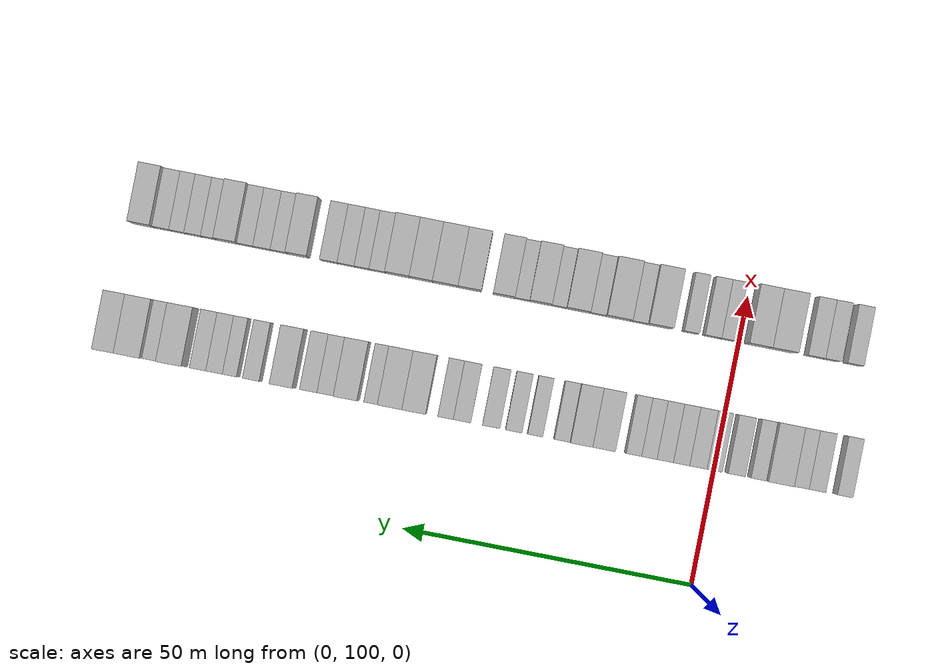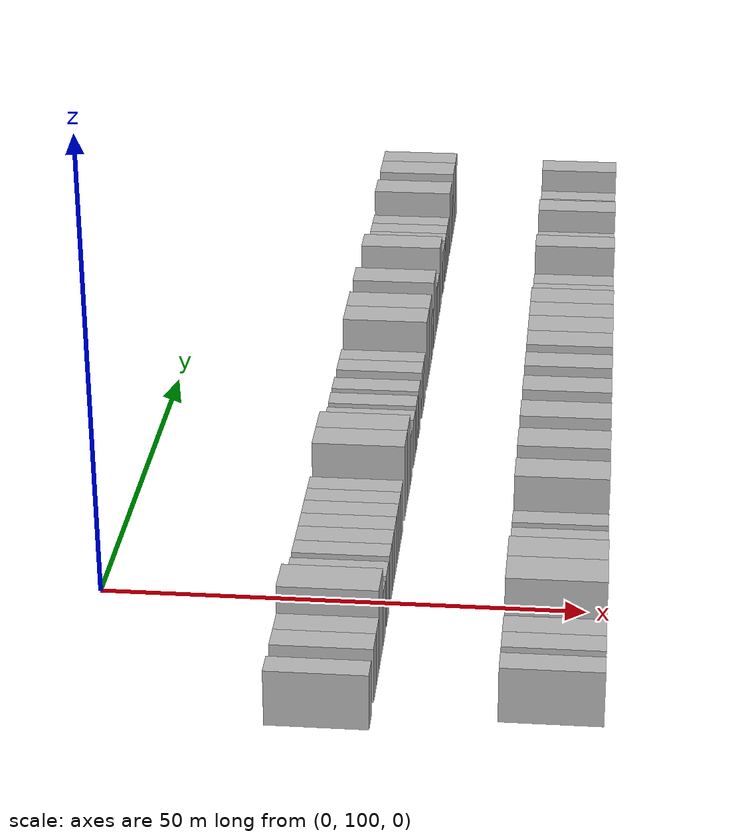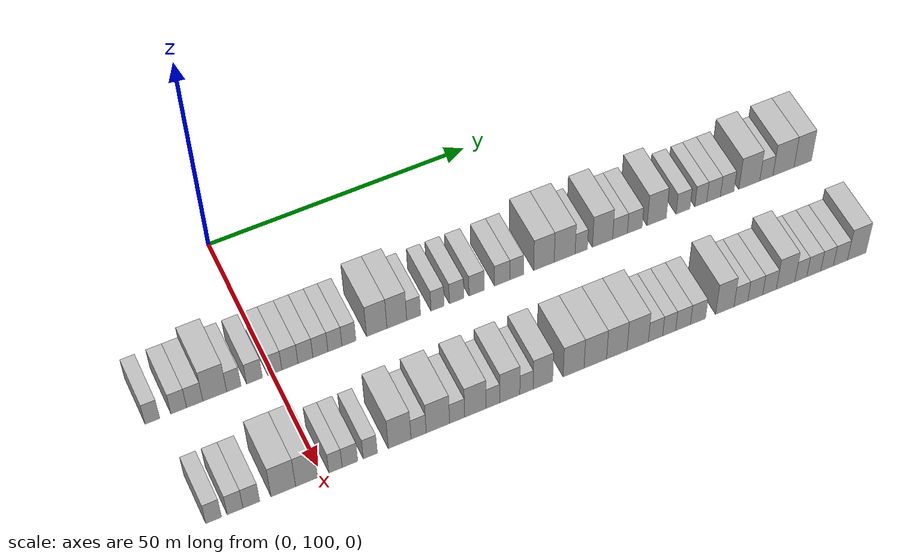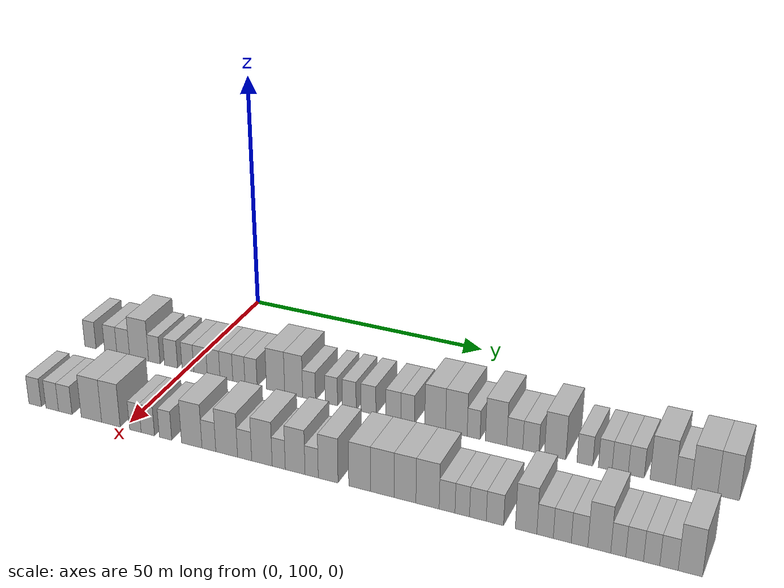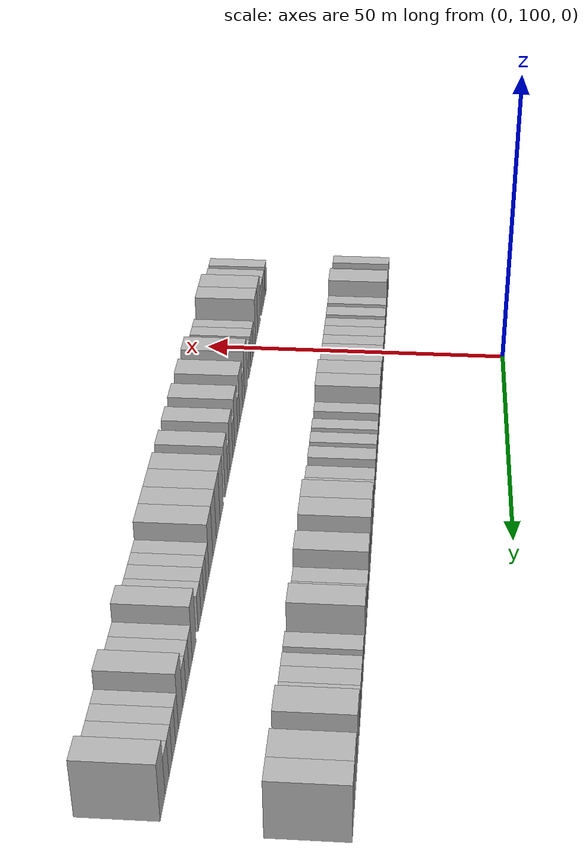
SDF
<sdf version="1.6">
 <world name="default">
  <model name="building_63">
   <static>1</static>
   <pose>25.0000 78.2187 0 0.000000 0.000000 0.000000</pose>
   <link name="link">
    <pose>0 0 3.00 0 0 0</pose>
    <collision name="collision"><geometry><box><size>10.0000 2.6273 6.0000</size></box></geometry></collision>
    <visual name="visual">
     <cast_shadows>0</cast_shadows>
     <geometry><box><size>10.0000 2.6273 6.0000</size></box></geometry>
     <material>
      <script>
       <uri>model://HANNAS_wall/materials/scripts</uri>
       <uri>model://HANNAS_wall/materials/textures</uri>
       <name>vrc/HANNAS_wall</name>
      </script>
     </material>
    </visual>
   </link>
  </model>
  <model name="building_64">
   <static>1</static>
   <pose>25.0000 82.9542 0 0.000000 0.000000 0.000000</pose>
   <link name="link">
    <pose>0 0 3.00 0 0 0</pose>
    <collision name="collision"><geometry><box><size>10.0000 2.8437 6.0000</size></box></geometry></collision>
    <visual name="visual">
     <cast_shadows>0</cast_shadows>
     <geometry><box><size>10.0000 2.8437 6.0000</size></box></geometry>
     <material>
      <script>
       <uri>model://HANNAS_wall/materials/scripts</uri>
       <uri>model://HANNAS_wall/materials/textures</uri>
       <name>vrc/HANNAS_wall</name>
      </script>
     </material>
    </visual>
   </link>
  </model>
  <model name="building_65">
   <static>1</static>
   <pose>25.0000 85.8451 0 0.000000 0.000000 0.000000</pose>
   <link name="link">
    <pose>0 0 3.00 0 0 0</pose>
    <collision name="collision"><geometry><box><size>10.0000 2.9380 6.0000</size></box></geometry></collision>
    <visual name="visual">
     <cast_shadows>0</cast_shadows>
     <geometry><box><size>10.0000 2.9380 6.0000</size></box></geometry>
     <material>
      <script>
       <uri>model://HANNAS_wall/materials/scripts</uri>
       <uri>model://HANNAS_wall/materials/textures</uri>
       <name>vrc/HANNAS_wall</name>
      </script>
     </material>
    </visual>
   </link>
  </model>
  <model name="building_66">
   <static>1</static>
   <pose>25.0000 89.4803 0 0.000000 0.000000 0.000000</pose>
   <link name="link">
    <pose>0 0 4.50 0 0 0</pose>
    <collision name="collision"><geometry><box><size>10.0000 4.3324 9.0000</size></box></geometry></collision>
    <visual name="visual">
     <cast_shadows>0</cast_shadows>
     <geometry><box><size>10.0000 4.3324 9.0000</size></box></geometry>
     <material>
      <script>
       <uri>model://HANNAS_wall/materials/scripts</uri>
       <uri>model://HANNAS_wall/materials/textures</uri>
       <name>vrc/HANNAS_wall</name>
      </script>
     </material>
    </visual>
   </link>
  </model>
  <model name="building_67">
   <static>1</static>
   <pose>25.0000 92.9520 0 0.000000 0.000000 0.000000</pose>
   <link name="link">
    <pose>0 0 3.00 0 0 0</pose>
    <collision name="collision"><geometry><box><size>10.0000 2.6109 6.0000</size></box></geometry></collision>
    <visual name="visual">
     <cast_shadows>0</cast_shadows>
     <geometry><box><size>10.0000 2.6109 6.0000</size></box></geometry>
     <material>
      <script>
       <uri>model://HANNAS_wall/materials/scripts</uri>
       <uri>model://HANNAS_wall/materials/textures</uri>
       <name>vrc/HANNAS_wall</name>
      </script>
     </material>
    </visual>
   </link>
  </model>
  <model name="building_68">
   <static>1</static>
   <pose>25.0000 96.7186 0 0.000000 0.000000 0.000000</pose>
   <link name="link">
    <pose>0 0 3.00 0 0 0</pose>
    <collision name="collision"><geometry><box><size>10.0000 2.9223 6.0000</size></box></geometry></collision>
    <visual name="visual">
     <cast_shadows>0</cast_shadows>
     <geometry><box><size>10.0000 2.9223 6.0000</size></box></geometry>
     <material>
      <script>
       <uri>model://HANNAS_wall/materials/scripts</uri>
       <uri>model://HANNAS_wall/materials/textures</uri>
       <name>vrc/HANNAS_wall</name>
      </script>
     </material>
    </visual>
   </link>
  </model>
  <model name="building_69">
   <static>1</static>
   <pose>25.0000 100.4769 0 0.000000 0.000000 0.000000</pose>
   <link name="link">
    <pose>0 0 3.00 0 0 0</pose>
    <collision name="collision"><geometry><box><size>10.0000 2.5943 6.0000</size></box></geometry></collision>
    <visual name="visual">
     <cast_shadows>0</cast_shadows>
     <geometry><box><size>10.0000 2.5943 6.0000</size></box></geometry>
     <material>
      <script>
       <uri>model://HANNAS_wall/materials/scripts</uri>
       <uri>model://HANNAS_wall/materials/textures</uri>
       <name>vrc/HANNAS_wall</name>
      </script>
     </material>
    </visual>
   </link>
  </model>
  <model name="building_70">
   <static>1</static>
   <pose>25.0000 103.2587 0 0.000000 0.000000 0.000000</pose>
   <link name="link">
    <pose>0 0 3.00 0 0 0</pose>
    <collision name="collision"><geometry><box><size>10.0000 2.9692 6.0000</size></box></geometry></collision>
    <visual name="visual">
     <cast_shadows>0</cast_shadows>
     <geometry><box><size>10.0000 2.9692 6.0000</size></box></geometry>
     <material>
      <script>
       <uri>model://HANNAS_wall/materials/scripts</uri>
       <uri>model://HANNAS_wall/materials/textures</uri>
       <name>vrc/HANNAS_wall</name>
      </script>
     </material>
    </visual>
   </link>
  </model>
  <model name="building_71">
   <static>1</static>
   <pose>25.0000 106.1296 0 0.000000 0.000000 0.000000</pose>
   <link name="link">
    <pose>0 0 3.00 0 0 0</pose>
    <collision name="collision"><geometry><box><size>10.0000 2.7726 6.0000</size></box></geometry></collision>
    <visual name="visual">
     <cast_shadows>0</cast_shadows>
     <geometry><box><size>10.0000 2.7726 6.0000</size></box></geometry>
     <material>
      <script>
       <uri>model://HANNAS_wall/materials/scripts</uri>
       <uri>model://HANNAS_wall/materials/textures</uri>
       <name>vrc/HANNAS_wall</name>
      </script>
     </material>
    </visual>
   </link>
  </model>
  <model name="building_72">
   <static>1</static>
   <pose>25.0000 108.9170 0 0.000000 0.000000 0.000000</pose>
   <link name="link">
    <pose>0 0 3.00 0 0 0</pose>
    <collision name="collision"><geometry><box><size>10.0000 2.8023 6.0000</size></box></geometry></collision>
    <visual name="visual">
     <cast_shadows>0</cast_shadows>
     <geometry><box><size>10.0000 2.8023 6.0000</size></box></geometry>
     <material>
      <script>
       <uri>model://HANNAS_wall/materials/scripts</uri>
       <uri>model://HANNAS_wall/materials/textures</uri>
       <name>vrc/HANNAS_wall</name>
      </script>
     </material>
    </visual>
   </link>
  </model>
  <model name="building_73">
   <static>1</static>
   <pose>25.0000 111.6233 0 0.000000 0.000000 0.000000</pose>
   <link name="link">
    <pose>0 0 3.00 0 0 0</pose>
    <collision name="collision"><geometry><box><size>10.0000 2.6103 6.0000</size></box></geometry></collision>
    <visual name="visual">
     <cast_shadows>0</cast_shadows>
     <geometry><box><size>10.0000 2.6103 6.0000</size></box></geometry>
     <material>
      <script>
       <uri>model://HANNAS_wall/materials/scripts</uri>
       <uri>model://HANNAS_wall/materials/textures</uri>
       <name>vrc/HANNAS_wall</name>
      </script>
     </material>
    </visual>
   </link>
  </model>
  <model name="building_74">
   <static>1</static>
   <pose>25.0000 114.2363 0 0.000000 0.000000 0.000000</pose>
   <link name="link">
    <pose>0 0 3.00 0 0 0</pose>
    <collision name="collision"><geometry><box><size>10.0000 2.6158 6.0000</size></box></geometry></collision>
    <visual name="visual">
     <cast_shadows>0</cast_shadows>
     <geometry><box><size>10.0000 2.6158 6.0000</size></box></geometry>
     <material>
      <script>
       <uri>model://HANNAS_wall/materials/scripts</uri>
       <uri>model://HANNAS_wall/materials/textures</uri>
       <name>vrc/HANNAS_wall</name>
      </script>
     </material>
    </visual>
   </link>
  </model>
  <model name="building_75">
   <static>1</static>
   <pose>25.0000 119.4671 0 0.000000 0.000000 0.000000</pose>
   <link name="link">
    <pose>0 0 4.50 0 0 0</pose>
    <collision name="collision"><geometry><box><size>10.0000 3.8458 9.0000</size></box></geometry></collision>
    <visual name="visual">
     <cast_shadows>0</cast_shadows>
     <geometry><box><size>10.0000 3.8458 9.0000</size></box></geometry>
     <material>
      <script>
       <uri>model://HANNAS_wall/materials/scripts</uri>
       <uri>model://HANNAS_wall/materials/textures</uri>
       <name>vrc/HANNAS_wall</name>
      </script>
     </material>
    </visual>
   </link>
  </model>
  <model name="building_76">
   <static>1</static>
   <pose>25.0000 123.2648 0 0.000000 0.000000 0.000000</pose>
   <link name="link">
    <pose>0 0 4.50 0 0 0</pose>
    <collision name="collision"><geometry><box><size>10.0000 3.7495 9.0000</size></box></geometry></collision>
    <visual name="visual">
     <cast_shadows>0</cast_shadows>
     <geometry><box><size>10.0000 3.7495 9.0000</size></box></geometry>
     <material>
      <script>
       <uri>model://HANNAS_wall/materials/scripts</uri>
       <uri>model://HANNAS_wall/materials/textures</uri>
       <name>vrc/HANNAS_wall</name>
      </script>
     </material>
    </visual>
   </link>
  </model>
  <model name="building_77">
   <static>1</static>
   <pose>25.0000 126.4600 0 0.000000 0.000000 0.000000</pose>
   <link name="link">
    <pose>0 0 3.00 0 0 0</pose>
    <collision name="collision"><geometry><box><size>10.0000 2.6410 6.0000</size></box></geometry></collision>
    <visual name="visual">
     <cast_shadows>0</cast_shadows>
     <geometry><box><size>10.0000 2.6410 6.0000</size></box></geometry>
     <material>
      <script>
       <uri>model://HANNAS_wall/materials/scripts</uri>
       <uri>model://HANNAS_wall/materials/textures</uri>
       <name>vrc/HANNAS_wall</name>
      </script>
     </material>
    </visual>
   </link>
  </model>
  <model name="building_78">
   <static>1</static>
   <pose>25.0000 131.0496 0 0.000000 0.000000 0.000000</pose>
   <link name="link">
    <pose>0 0 3.00 0 0 0</pose>
    <collision name="collision"><geometry><box><size>10.0000 2.5381 6.0000</size></box></geometry></collision>
    <visual name="visual">
     <cast_shadows>0</cast_shadows>
     <geometry><box><size>10.0000 2.5381 6.0000</size></box></geometry>
     <material>
      <script>
       <uri>model://HANNAS_wall/materials/scripts</uri>
       <uri>model://HANNAS_wall/materials/textures</uri>
       <name>vrc/HANNAS_wall</name>
      </script>
     </material>
    </visual>
   </link>
  </model>
  <model name="building_79">
   <static>1</static>
   <pose>25.0000 134.7054 0 0.000000 0.000000 0.000000</pose>
   <link name="link">
    <pose>0 0 3.00 0 0 0</pose>
    <collision name="collision"><geometry><box><size>10.0000 2.7735 6.0000</size></box></geometry></collision>
    <visual name="visual">
     <cast_shadows>0</cast_shadows>
     <geometry><box><size>10.0000 2.7735 6.0000</size></box></geometry>
     <material>
      <script>
       <uri>model://HANNAS_wall/materials/scripts</uri>
       <uri>model://HANNAS_wall/materials/textures</uri>
       <name>vrc/HANNAS_wall</name>
      </script>
     </material>
    </visual>
   </link>
  </model>
  <model name="building_80">
   <static>1</static>
   <pose>25.0000 138.5735 0 0.000000 0.000000 0.000000</pose>
   <link name="link">
    <pose>0 0 3.00 0 0 0</pose>
    <collision name="collision"><geometry><box><size>10.0000 2.9628 6.0000</size></box></geometry></collision>
    <visual name="visual">
     <cast_shadows>0</cast_shadows>
     <geometry><box><size>10.0000 2.9628 6.0000</size></box></geometry>
     <material>
      <script>
       <uri>model://HANNAS_wall/materials/scripts</uri>
       <uri>model://HANNAS_wall/materials/textures</uri>
       <name>vrc/HANNAS_wall</name>
      </script>
     </material>
    </visual>
   </link>
  </model>
  <model name="building_81">
   <static>1</static>
   <pose>25.0000 143.5433 0 0.000000 0.000000 0.000000</pose>
   <link name="link">
    <pose>0 0 3.00 0 0 0</pose>
    <collision name="collision"><geometry><box><size>10.0000 2.9768 6.0000</size></box></geometry></collision>
    <visual name="visual">
     <cast_shadows>0</cast_shadows>
     <geometry><box><size>10.0000 2.9768 6.0000</size></box></geometry>
     <material>
      <script>
       <uri>model://HANNAS_wall/materials/scripts</uri>
       <uri>model://HANNAS_wall/materials/textures</uri>
       <name>vrc/HANNAS_wall</name>
      </script>
     </material>
    </visual>
   </link>
  </model>
  <model name="building_82">
   <static>1</static>
   <pose>25.0000 146.3601 0 0.000000 0.000000 0.000000</pose>
   <link name="link">
    <pose>0 0 3.00 0 0 0</pose>
    <collision name="collision"><geometry><box><size>10.0000 2.6568 6.0000</size></box></geometry></collision>
    <visual name="visual">
     <cast_shadows>0</cast_shadows>
     <geometry><box><size>10.0000 2.6568 6.0000</size></box></geometry>
     <material>
      <script>
       <uri>model://HANNAS_wall/materials/scripts</uri>
       <uri>model://HANNAS_wall/materials/textures</uri>
       <name>vrc/HANNAS_wall</name>
      </script>
     </material>
    </visual>
   </link>
  </model>
  <model name="building_83">
   <static>1</static>
   <pose>25.0000 151.7048 0 0.000000 0.000000 0.000000</pose>
   <link name="link">
    <pose>0 0 4.50 0 0 0</pose>
    <collision name="collision"><geometry><box><size>10.0000 4.0326 9.0000</size></box></geometry></collision>
    <visual name="visual">
     <cast_shadows>0</cast_shadows>
     <geometry><box><size>10.0000 4.0326 9.0000</size></box></geometry>
     <material>
      <script>
       <uri>model://HANNAS_wall/materials/scripts</uri>
       <uri>model://HANNAS_wall/materials/textures</uri>
       <name>vrc/HANNAS_wall</name>
      </script>
     </material>
    </visual>
   </link>
  </model>
  <model name="building_84">
   <static>1</static>
   <pose>25.0000 155.7863 0 0.000000 0.000000 0.000000</pose>
   <link name="link">
    <pose>0 0 4.50 0 0 0</pose>
    <collision name="collision"><geometry><box><size>10.0000 4.1305 9.0000</size></box></geometry></collision>
    <visual name="visual">
     <cast_shadows>0</cast_shadows>
     <geometry><box><size>10.0000 4.1305 9.0000</size></box></geometry>
     <material>
      <script>
       <uri>model://HANNAS_wall/materials/scripts</uri>
       <uri>model://HANNAS_wall/materials/textures</uri>
       <name>vrc/HANNAS_wall</name>
      </script>
     </material>
    </visual>
   </link>
  </model>
  <model name="building_85">
   <static>1</static>
   <pose>25.0000 159.0756 0 0.000000 0.000000 0.000000</pose>
   <link name="link">
    <pose>0 0 3.00 0 0 0</pose>
    <collision name="collision"><geometry><box><size>10.0000 2.4480 6.0000</size></box></geometry></collision>
    <visual name="visual">
     <cast_shadows>0</cast_shadows>
     <geometry><box><size>10.0000 2.4480 6.0000</size></box></geometry>
     <material>
      <script>
       <uri>model://HANNAS_wall/materials/scripts</uri>
       <uri>model://HANNAS_wall/materials/textures</uri>
       <name>vrc/HANNAS_wall</name>
      </script>
     </material>
    </visual>
   </link>
  </model>
  <model name="building_86">
   <static>1</static>
   <pose>25.0000 163.3128 0 0.000000 0.000000 0.000000</pose>
   <link name="link">
    <pose>0 0 4.50 0 0 0</pose>
    <collision name="collision"><geometry><box><size>10.0000 4.0264 9.0000</size></box></geometry></collision>
    <visual name="visual">
     <cast_shadows>0</cast_shadows>
     <geometry><box><size>10.0000 4.0264 9.0000</size></box></geometry>
     <material>
      <script>
       <uri>model://HANNAS_wall/materials/scripts</uri>
       <uri>model://HANNAS_wall/materials/textures</uri>
       <name>vrc/HANNAS_wall</name>
      </script>
     </material>
    </visual>
   </link>
  </model>
  <model name="building_87">
   <static>1</static>
   <pose>25.0000 166.8085 0 0.000000 0.000000 0.000000</pose>
   <link name="link">
    <pose>0 0 3.00 0 0 0</pose>
    <collision name="collision"><geometry><box><size>10.0000 2.9652 6.0000</size></box></geometry></collision>
    <visual name="visual">
     <cast_shadows>0</cast_shadows>
     <geometry><box><size>10.0000 2.9652 6.0000</size></box></geometry>
     <material>
      <script>
       <uri>model://HANNAS_wall/materials/scripts</uri>
       <uri>model://HANNAS_wall/materials/textures</uri>
       <name>vrc/HANNAS_wall</name>
      </script>
     </material>
    </visual>
   </link>
  </model>
  <model name="building_88">
   <static>1</static>
   <pose>25.0000 169.7756 0 0.000000 0.000000 0.000000</pose>
   <link name="link">
    <pose>0 0 3.00 0 0 0</pose>
    <collision name="collision"><geometry><box><size>10.0000 2.9689 6.0000</size></box></geometry></collision>
    <visual name="visual">
     <cast_shadows>0</cast_shadows>
     <geometry><box><size>10.0000 2.9689 6.0000</size></box></geometry>
     <material>
      <script>
       <uri>model://HANNAS_wall/materials/scripts</uri>
       <uri>model://HANNAS_wall/materials/textures</uri>
       <name>vrc/HANNAS_wall</name>
      </script>
     </material>
    </visual>
   </link>
  </model>
  <model name="building_89">
   <static>1</static>
   <pose>25.0000 174.2043 0 0.000000 0.000000 0.000000</pose>
   <link name="link">
    <pose>0 0 4.50 0 0 0</pose>
    <collision name="collision"><geometry><box><size>10.0000 3.8884 9.0000</size></box></geometry></collision>
    <visual name="visual">
     <cast_shadows>0</cast_shadows>
     <geometry><box><size>10.0000 3.8884 9.0000</size></box></geometry>
     <material>
      <script>
       <uri>model://HANNAS_wall/materials/scripts</uri>
       <uri>model://HANNAS_wall/materials/textures</uri>
       <name>vrc/HANNAS_wall</name>
      </script>
     </material>
    </visual>
   </link>
  </model>
  <model name="building_90">
   <static>1</static>
   <pose>25.0000 179.5667 0 0.000000 0.000000 0.000000</pose>
   <link name="link">
    <pose>0 0 3.00 0 0 0</pose>
    <collision name="collision"><geometry><box><size>10.0000 2.8364 6.0000</size></box></geometry></collision>
    <visual name="visual">
     <cast_shadows>0</cast_shadows>
     <geometry><box><size>10.0000 2.8364 6.0000</size></box></geometry>
     <material>
      <script>
       <uri>model://HANNAS_wall/materials/scripts</uri>
       <uri>model://HANNAS_wall/materials/textures</uri>
       <name>vrc/HANNAS_wall</name>
      </script>
     </material>
    </visual>
   </link>
  </model>
  <model name="building_91">
   <static>1</static>
   <pose>25.0000 183.1936 0 0.000000 0.000000 0.000000</pose>
   <link name="link">
    <pose>0 0 3.00 0 0 0</pose>
    <collision name="collision"><geometry><box><size>10.0000 2.4175 6.0000</size></box></geometry></collision>
    <visual name="visual">
     <cast_shadows>0</cast_shadows>
     <geometry><box><size>10.0000 2.4175 6.0000</size></box></geometry>
     <material>
      <script>
       <uri>model://HANNAS_wall/materials/scripts</uri>
       <uri>model://HANNAS_wall/materials/textures</uri>
       <name>vrc/HANNAS_wall</name>
      </script>
     </material>
    </visual>
   </link>
  </model>
  <model name="building_92">
   <static>1</static>
   <pose>25.0000 185.8196 0 0.000000 0.000000 0.000000</pose>
   <link name="link">
    <pose>0 0 3.00 0 0 0</pose>
    <collision name="collision"><geometry><box><size>10.0000 2.8343 6.0000</size></box></geometry></collision>
    <visual name="visual">
     <cast_shadows>0</cast_shadows>
     <geometry><box><size>10.0000 2.8343 6.0000</size></box></geometry>
     <material>
      <script>
       <uri>model://HANNAS_wall/materials/scripts</uri>
       <uri>model://HANNAS_wall/materials/textures</uri>
       <name>vrc/HANNAS_wall</name>
      </script>
     </material>
    </visual>
   </link>
  </model>
  <model name="building_93">
   <static>1</static>
   <pose>25.0000 188.6347 0 0.000000 0.000000 0.000000</pose>
   <link name="link">
    <pose>0 0 3.00 0 0 0</pose>
    <collision name="collision"><geometry><box><size>10.0000 2.7960 6.0000</size></box></geometry></collision>
    <visual name="visual">
     <cast_shadows>0</cast_shadows>
     <geometry><box><size>10.0000 2.7960 6.0000</size></box></geometry>
     <material>
      <script>
       <uri>model://HANNAS_wall/materials/scripts</uri>
       <uri>model://HANNAS_wall/materials/textures</uri>
       <name>vrc/HANNAS_wall</name>
      </script>
     </material>
    </visual>
   </link>
  </model>
  <model name="building_94">
   <static>1</static>
   <pose>25.0000 193.1961 0 0.000000 0.000000 0.000000</pose>
   <link name="link">
    <pose>0 0 4.50 0 0 0</pose>
    <collision name="collision"><geometry><box><size>10.0000 4.3268 9.0000</size></box></geometry></collision>
    <visual name="visual">
     <cast_shadows>0</cast_shadows>
     <geometry><box><size>10.0000 4.3268 9.0000</size></box></geometry>
     <material>
      <script>
       <uri>model://HANNAS_wall/materials/scripts</uri>
       <uri>model://HANNAS_wall/materials/textures</uri>
       <name>vrc/HANNAS_wall</name>
      </script>
     </material>
    </visual>
   </link>
  </model>
  <model name="building_95">
   <static>1</static>
   <pose>25.0000 196.7369 0 0.000000 0.000000 0.000000</pose>
   <link name="link">
    <pose>0 0 3.00 0 0 0</pose>
    <collision name="collision"><geometry><box><size>10.0000 2.7548 6.0000</size></box></geometry></collision>
    <visual name="visual">
     <cast_shadows>0</cast_shadows>
     <geometry><box><size>10.0000 2.7548 6.0000</size></box></geometry>
     <material>
      <script>
       <uri>model://HANNAS_wall/materials/scripts</uri>
       <uri>model://HANNAS_wall/materials/textures</uri>
       <name>vrc/HANNAS_wall</name>
      </script>
     </material>
    </visual>
   </link>
  </model>
  <model name="building_96">
   <static>1</static>
   <pose>25.0000 200.3166 0 0.000000 0.000000 0.000000</pose>
   <link name="link">
    <pose>0 0 4.50 0 0 0</pose>
    <collision name="collision"><geometry><box><size>10.0000 4.4045 9.0000</size></box></geometry></collision>
    <visual name="visual">
     <cast_shadows>0</cast_shadows>
     <geometry><box><size>10.0000 4.4045 9.0000</size></box></geometry>
     <material>
      <script>
       <uri>model://HANNAS_wall/materials/scripts</uri>
       <uri>model://HANNAS_wall/materials/textures</uri>
       <name>vrc/HANNAS_wall</name>
      </script>
     </material>
    </visual>
   </link>
  </model>
  <model name="building_97">
   <static>1</static>
   <pose>25.0000 204.3567 0 0.000000 0.000000 0.000000</pose>
   <link name="link">
    <pose>0 0 4.50 0 0 0</pose>
    <collision name="collision"><geometry><box><size>10.0000 3.6758 9.0000</size></box></geometry></collision>
    <visual name="visual">
     <cast_shadows>0</cast_shadows>
     <geometry><box><size>10.0000 3.6758 9.0000</size></box></geometry>
     <material>
      <script>
       <uri>model://HANNAS_wall/materials/scripts</uri>
       <uri>model://HANNAS_wall/materials/textures</uri>
       <name>vrc/HANNAS_wall</name>
      </script>
     </material>
    </visual>
   </link>
  </model>
  <model name="building_175">
   <static>1</static>
   <pose>47.0000 80.6917 0 0.000000 0.000000 0.000000</pose>
   <link name="link">
    <pose>0 0 3.00 0 0 0</pose>
    <collision name="collision"><geometry><box><size>10.0000 2.7684 6.0000</size></box></geometry></collision>
    <visual name="visual">
     <cast_shadows>0</cast_shadows>
     <geometry><box><size>10.0000 2.7684 6.0000</size></box></geometry>
     <material>
      <script>
       <uri>model://HANNAS_wall/materials/scripts</uri>
       <uri>model://HANNAS_wall/materials/textures</uri>
       <name>vrc/HANNAS_wall</name>
      </script>
     </material>
    </visual>
   </link>
  </model>
  <model name="building_176">
   <static>1</static>
   <pose>47.0000 84.4657 0 0.000000 0.000000 0.000000</pose>
   <link name="link">
    <pose>0 0 3.00 0 0 0</pose>
    <collision name="collision"><geometry><box><size>10.0000 2.7797 6.0000</size></box></geometry></collision>
    <visual name="visual">
     <cast_shadows>0</cast_shadows>
     <geometry><box><size>10.0000 2.7797 6.0000</size></box></geometry>
     <material>
      <script>
       <uri>model://HANNAS_wall/materials/scripts</uri>
       <uri>model://HANNAS_wall/materials/textures</uri>
       <name>vrc/HANNAS_wall</name>
      </script>
     </material>
    </visual>
   </link>
  </model>
  <model name="building_177">
   <static>1</static>
   <pose>47.0000 87.3333 0 0.000000 0.000000 0.000000</pose>
   <link name="link">
    <pose>0 0 3.00 0 0 0</pose>
    <collision name="collision"><geometry><box><size>10.0000 2.9554 6.0000</size></box></geometry></collision>
    <visual name="visual">
     <cast_shadows>0</cast_shadows>
     <geometry><box><size>10.0000 2.9554 6.0000</size></box></geometry>
     <material>
      <script>
       <uri>model://HANNAS_wall/materials/scripts</uri>
       <uri>model://HANNAS_wall/materials/textures</uri>
       <name>vrc/HANNAS_wall</name>
      </script>
     </material>
    </visual>
   </link>
  </model>
  <model name="building_178">
   <static>1</static>
   <pose>47.0000 93.0065 0 0.000000 0.000000 0.000000</pose>
   <link name="link">
    <pose>0 0 4.50 0 0 0</pose>
    <collision name="collision"><geometry><box><size>10.0000 4.3910 9.0000</size></box></geometry></collision>
    <visual name="visual">
     <cast_shadows>0</cast_shadows>
     <geometry><box><size>10.0000 4.3910 9.0000</size></box></geometry>
     <material>
      <script>
       <uri>model://HANNAS_wall/materials/scripts</uri>
       <uri>model://HANNAS_wall/materials/textures</uri>
       <name>vrc/HANNAS_wall</name>
      </script>
     </material>
    </visual>
   </link>
  </model>
  <model name="building_179">
   <static>1</static>
   <pose>47.0000 97.1750 0 0.000000 0.000000 0.000000</pose>
   <link name="link">
    <pose>0 0 4.50 0 0 0</pose>
    <collision name="collision"><geometry><box><size>10.0000 3.9461 9.0000</size></box></geometry></collision>
    <visual name="visual">
     <cast_shadows>0</cast_shadows>
     <geometry><box><size>10.0000 3.9461 9.0000</size></box></geometry>
     <material>
      <script>
       <uri>model://HANNAS_wall/materials/scripts</uri>
       <uri>model://HANNAS_wall/materials/textures</uri>
       <name>vrc/HANNAS_wall</name>
      </script>
     </material>
    </visual>
   </link>
  </model>
  <model name="building_180">
   <static>1</static>
   <pose>47.0000 102.3593 0 0.000000 0.000000 0.000000</pose>
   <link name="link">
    <pose>0 0 3.00 0 0 0</pose>
    <collision name="collision"><geometry><box><size>10.0000 2.4224 6.0000</size></box></geometry></collision>
    <visual name="visual">
     <cast_shadows>0</cast_shadows>
     <geometry><box><size>10.0000 2.4224 6.0000</size></box></geometry>
     <material>
      <script>
       <uri>model://HANNAS_wall/materials/scripts</uri>
       <uri>model://HANNAS_wall/materials/textures</uri>
       <name>vrc/HANNAS_wall</name>
      </script>
     </material>
    </visual>
   </link>
  </model>
  <model name="building_181">
   <static>1</static>
   <pose>47.0000 104.9657 0 0.000000 0.000000 0.000000</pose>
   <link name="link">
    <pose>0 0 3.00 0 0 0</pose>
    <collision name="collision"><geometry><box><size>10.0000 2.7906 6.0000</size></box></geometry></collision>
    <visual name="visual">
     <cast_shadows>0</cast_shadows>
     <geometry><box><size>10.0000 2.7906 6.0000</size></box></geometry>
     <material>
      <script>
       <uri>model://HANNAS_wall/materials/scripts</uri>
       <uri>model://HANNAS_wall/materials/textures</uri>
       <name>vrc/HANNAS_wall</name>
      </script>
     </material>
    </visual>
   </link>
  </model>
  <model name="building_182">
   <static>1</static>
   <pose>47.0000 108.6412 0 0.000000 0.000000 0.000000</pose>
   <link name="link">
    <pose>0 0 3.00 0 0 0</pose>
    <collision name="collision"><geometry><box><size>10.0000 2.5604 6.0000</size></box></geometry></collision>
    <visual name="visual">
     <cast_shadows>0</cast_shadows>
     <geometry><box><size>10.0000 2.5604 6.0000</size></box></geometry>
     <material>
      <script>
       <uri>model://HANNAS_wall/materials/scripts</uri>
       <uri>model://HANNAS_wall/materials/textures</uri>
       <name>vrc/HANNAS_wall</name>
      </script>
     </material>
    </visual>
   </link>
  </model>
  <model name="building_183">
   <static>1</static>
   <pose>47.0000 113.9983 0 0.000000 0.000000 0.000000</pose>
   <link name="link">
    <pose>0 0 4.50 0 0 0</pose>
    <collision name="collision"><geometry><box><size>10.0000 4.1538 9.0000</size></box></geometry></collision>
    <visual name="visual">
     <cast_shadows>0</cast_shadows>
     <geometry><box><size>10.0000 4.1538 9.0000</size></box></geometry>
     <material>
      <script>
       <uri>model://HANNAS_wall/materials/scripts</uri>
       <uri>model://HANNAS_wall/materials/textures</uri>
       <name>vrc/HANNAS_wall</name>
      </script>
     </material>
    </visual>
   </link>
  </model>
  <model name="building_184">
   <static>1</static>
   <pose>47.0000 117.4689 0 0.000000 0.000000 0.000000</pose>
   <link name="link">
    <pose>0 0 3.00 0 0 0</pose>
    <collision name="collision"><geometry><box><size>10.0000 2.7874 6.0000</size></box></geometry></collision>
    <visual name="visual">
     <cast_shadows>0</cast_shadows>
     <geometry><box><size>10.0000 2.7874 6.0000</size></box></geometry>
     <material>
      <script>
       <uri>model://HANNAS_wall/materials/scripts</uri>
       <uri>model://HANNAS_wall/materials/textures</uri>
       <name>vrc/HANNAS_wall</name>
      </script>
     </material>
    </visual>
   </link>
  </model>
  <model name="building_185">
   <static>1</static>
   <pose>47.0000 121.0290 0 0.000000 0.000000 0.000000</pose>
   <link name="link">
    <pose>0 0 4.50 0 0 0</pose>
    <collision name="collision"><geometry><box><size>10.0000 4.3328 9.0000</size></box></geometry></collision>
    <visual name="visual">
     <cast_shadows>0</cast_shadows>
     <geometry><box><size>10.0000 4.3328 9.0000</size></box></geometry>
     <material>
      <script>
       <uri>model://HANNAS_wall/materials/scripts</uri>
       <uri>model://HANNAS_wall/materials/textures</uri>
       <name>vrc/HANNAS_wall</name>
      </script>
     </material>
    </visual>
   </link>
  </model>
  <model name="building_186">
   <static>1</static>
   <pose>47.0000 124.5922 0 0.000000 0.000000 0.000000</pose>
   <link name="link">
    <pose>0 0 3.00 0 0 0</pose>
    <collision name="collision"><geometry><box><size>10.0000 2.7938 6.0000</size></box></geometry></collision>
    <visual name="visual">
     <cast_shadows>0</cast_shadows>
     <geometry><box><size>10.0000 2.7938 6.0000</size></box></geometry>
     <material>
      <script>
       <uri>model://HANNAS_wall/materials/scripts</uri>
       <uri>model://HANNAS_wall/materials/textures</uri>
       <name>vrc/HANNAS_wall</name>
      </script>
     </material>
    </visual>
   </link>
  </model>
  <model name="building_187">
   <static>1</static>
   <pose>47.0000 127.9902 0 0.000000 0.000000 0.000000</pose>
   <link name="link">
    <pose>0 0 4.50 0 0 0</pose>
    <collision name="collision"><geometry><box><size>10.0000 4.0020 9.0000</size></box></geometry></collision>
    <visual name="visual">
     <cast_shadows>0</cast_shadows>
     <geometry><box><size>10.0000 4.0020 9.0000</size></box></geometry>
     <material>
      <script>
       <uri>model://HANNAS_wall/materials/scripts</uri>
       <uri>model://HANNAS_wall/materials/textures</uri>
       <name>vrc/HANNAS_wall</name>
      </script>
     </material>
    </visual>
   </link>
  </model>
  <model name="building_188">
   <static>1</static>
   <pose>47.0000 131.2555 0 0.000000 0.000000 0.000000</pose>
   <link name="link">
    <pose>0 0 3.00 0 0 0</pose>
    <collision name="collision"><geometry><box><size>10.0000 2.5286 6.0000</size></box></geometry></collision>
    <visual name="visual">
     <cast_shadows>0</cast_shadows>
     <geometry><box><size>10.0000 2.5286 6.0000</size></box></geometry>
     <material>
      <script>
       <uri>model://HANNAS_wall/materials/scripts</uri>
       <uri>model://HANNAS_wall/materials/textures</uri>
       <name>vrc/HANNAS_wall</name>
      </script>
     </material>
    </visual>
   </link>
  </model>
  <model name="building_189">
   <static>1</static>
   <pose>47.0000 134.4134 0 0.000000 0.000000 0.000000</pose>
   <link name="link">
    <pose>0 0 4.50 0 0 0</pose>
    <collision name="collision"><geometry><box><size>10.0000 3.7871 9.0000</size></box></geometry></collision>
    <visual name="visual">
     <cast_shadows>0</cast_shadows>
     <geometry><box><size>10.0000 3.7871 9.0000</size></box></geometry>
     <material>
      <script>
       <uri>model://HANNAS_wall/materials/scripts</uri>
       <uri>model://HANNAS_wall/materials/textures</uri>
       <name>vrc/HANNAS_wall</name>
      </script>
     </material>
    </visual>
   </link>
  </model>
  <model name="building_190">
   <static>1</static>
   <pose>47.0000 137.5608 0 0.000000 0.000000 0.000000</pose>
   <link name="link">
    <pose>0 0 3.00 0 0 0</pose>
    <collision name="collision"><geometry><box><size>10.0000 2.5078 6.0000</size></box></geometry></collision>
    <visual name="visual">
     <cast_shadows>0</cast_shadows>
     <geometry><box><size>10.0000 2.5078 6.0000</size></box></geometry>
     <material>
      <script>
       <uri>model://HANNAS_wall/materials/scripts</uri>
       <uri>model://HANNAS_wall/materials/textures</uri>
       <name>vrc/HANNAS_wall</name>
      </script>
     </material>
    </visual>
   </link>
  </model>
  <model name="building_191">
   <static>1</static>
   <pose>47.0000 140.6738 0 0.000000 0.000000 0.000000</pose>
   <link name="link">
    <pose>0 0 4.50 0 0 0</pose>
    <collision name="collision"><geometry><box><size>10.0000 3.7181 9.0000</size></box></geometry></collision>
    <visual name="visual">
     <cast_shadows>0</cast_shadows>
     <geometry><box><size>10.0000 3.7181 9.0000</size></box></geometry>
     <material>
      <script>
       <uri>model://HANNAS_wall/materials/scripts</uri>
       <uri>model://HANNAS_wall/materials/textures</uri>
       <name>vrc/HANNAS_wall</name>
      </script>
     </material>
    </visual>
   </link>
  </model>
  <model name="building_192">
   <static>1</static>
   <pose>47.0000 146.5259 0 0.000000 0.000000 0.000000</pose>
   <link name="link">
    <pose>0 0 4.50 0 0 0</pose>
    <collision name="collision"><geometry><box><size>10.0000 3.9861 9.0000</size></box></geometry></collision>
    <visual name="visual">
     <cast_shadows>0</cast_shadows>
     <geometry><box><size>10.0000 3.9861 9.0000</size></box></geometry>
     <material>
      <script>
       <uri>model://HANNAS_wall/materials/scripts</uri>
       <uri>model://HANNAS_wall/materials/textures</uri>
       <name>vrc/HANNAS_wall</name>
      </script>
     </material>
    </visual>
   </link>
  </model>
  <model name="building_193">
   <static>1</static>
   <pose>47.0000 150.6823 0 0.000000 0.000000 0.000000</pose>
   <link name="link">
    <pose>0 0 4.50 0 0 0</pose>
    <collision name="collision"><geometry><box><size>10.0000 4.3267 9.0000</size></box></geometry></collision>
    <visual name="visual">
     <cast_shadows>0</cast_shadows>
     <geometry><box><size>10.0000 4.3267 9.0000</size></box></geometry>
     <material>
      <script>
       <uri>model://HANNAS_wall/materials/scripts</uri>
       <uri>model://HANNAS_wall/materials/textures</uri>
       <name>vrc/HANNAS_wall</name>
      </script>
     </material>
    </visual>
   </link>
  </model>
  <model name="building_194">
   <static>1</static>
   <pose>47.0000 154.8243 0 0.000000 0.000000 0.000000</pose>
   <link name="link">
    <pose>0 0 4.50 0 0 0</pose>
    <collision name="collision"><geometry><box><size>10.0000 3.9573 9.0000</size></box></geometry></collision>
    <visual name="visual">
     <cast_shadows>0</cast_shadows>
     <geometry><box><size>10.0000 3.9573 9.0000</size></box></geometry>
     <material>
      <script>
       <uri>model://HANNAS_wall/materials/scripts</uri>
       <uri>model://HANNAS_wall/materials/textures</uri>
       <name>vrc/HANNAS_wall</name>
      </script>
     </material>
    </visual>
   </link>
  </model>
  <model name="building_195">
   <static>1</static>
   <pose>47.0000 158.8759 0 0.000000 0.000000 0.000000</pose>
   <link name="link">
    <pose>0 0 4.50 0 0 0</pose>
    <collision name="collision"><geometry><box><size>10.0000 4.1460 9.0000</size></box></geometry></collision>
    <visual name="visual">
     <cast_shadows>0</cast_shadows>
     <geometry><box><size>10.0000 4.1460 9.0000</size></box></geometry>
     <material>
      <script>
       <uri>model://HANNAS_wall/materials/scripts</uri>
       <uri>model://HANNAS_wall/materials/textures</uri>
       <name>vrc/HANNAS_wall</name>
      </script>
     </material>
    </visual>
   </link>
  </model>
  <model name="building_196">
   <static>1</static>
   <pose>47.0000 162.3467 0 0.000000 0.000000 0.000000</pose>
   <link name="link">
    <pose>0 0 3.00 0 0 0</pose>
    <collision name="collision"><geometry><box><size>10.0000 2.7957 6.0000</size></box></geometry></collision>
    <visual name="visual">
     <cast_shadows>0</cast_shadows>
     <geometry><box><size>10.0000 2.7957 6.0000</size></box></geometry>
     <material>
      <script>
       <uri>model://HANNAS_wall/materials/scripts</uri>
       <uri>model://HANNAS_wall/materials/textures</uri>
       <name>vrc/HANNAS_wall</name>
      </script>
     </material>
    </visual>
   </link>
  </model>
  <model name="building_197">
   <static>1</static>
   <pose>47.0000 165.0120 0 0.000000 0.000000 0.000000</pose>
   <link name="link">
    <pose>0 0 3.00 0 0 0</pose>
    <collision name="collision"><geometry><box><size>10.0000 2.5349 6.0000</size></box></geometry></collision>
    <visual name="visual">
     <cast_shadows>0</cast_shadows>
     <geometry><box><size>10.0000 2.5349 6.0000</size></box></geometry>
     <material>
      <script>
       <uri>model://HANNAS_wall/materials/scripts</uri>
       <uri>model://HANNAS_wall/materials/textures</uri>
       <name>vrc/HANNAS_wall</name>
      </script>
     </material>
    </visual>
   </link>
  </model>
  <model name="building_198">
   <static>1</static>
   <pose>47.0000 167.7333 0 0.000000 0.000000 0.000000</pose>
   <link name="link">
    <pose>0 0 3.00 0 0 0</pose>
    <collision name="collision"><geometry><box><size>10.0000 2.9078 6.0000</size></box></geometry></collision>
    <visual name="visual">
     <cast_shadows>0</cast_shadows>
     <geometry><box><size>10.0000 2.9078 6.0000</size></box></geometry>
     <material>
      <script>
       <uri>model://HANNAS_wall/materials/scripts</uri>
       <uri>model://HANNAS_wall/materials/textures</uri>
       <name>vrc/HANNAS_wall</name>
      </script>
     </material>
    </visual>
   </link>
  </model>
  <model name="building_199">
   <static>1</static>
   <pose>47.0000 170.6797 0 0.000000 0.000000 0.000000</pose>
   <link name="link">
    <pose>0 0 3.00 0 0 0</pose>
    <collision name="collision"><geometry><box><size>10.0000 2.9852 6.0000</size></box></geometry></collision>
    <visual name="visual">
     <cast_shadows>0</cast_shadows>
     <geometry><box><size>10.0000 2.9852 6.0000</size></box></geometry>
     <material>
      <script>
       <uri>model://HANNAS_wall/materials/scripts</uri>
       <uri>model://HANNAS_wall/materials/textures</uri>
       <name>vrc/HANNAS_wall</name>
      </script>
     </material>
    </visual>
   </link>
  </model>
  <model name="building_200">
   <static>1</static>
   <pose>47.0000 175.9912 0 0.000000 0.000000 0.000000</pose>
   <link name="link">
    <pose>0 0 4.50 0 0 0</pose>
    <collision name="collision"><geometry><box><size>10.0000 3.6379 9.0000</size></box></geometry></collision>
    <visual name="visual">
     <cast_shadows>0</cast_shadows>
     <geometry><box><size>10.0000 3.6379 9.0000</size></box></geometry>
     <material>
      <script>
       <uri>model://HANNAS_wall/materials/scripts</uri>
       <uri>model://HANNAS_wall/materials/textures</uri>
       <name>vrc/HANNAS_wall</name>
      </script>
     </material>
    </visual>
   </link>
  </model>
  <model name="building_201">
   <static>1</static>
   <pose>47.0000 179.1905 0 0.000000 0.000000 0.000000</pose>
   <link name="link">
    <pose>0 0 3.00 0 0 0</pose>
    <collision name="collision"><geometry><box><size>10.0000 2.7607 6.0000</size></box></geometry></collision>
    <visual name="visual">
     <cast_shadows>0</cast_shadows>
     <geometry><box><size>10.0000 2.7607 6.0000</size></box></geometry>
     <material>
      <script>
       <uri>model://HANNAS_wall/materials/scripts</uri>
       <uri>model://HANNAS_wall/materials/textures</uri>
       <name>vrc/HANNAS_wall</name>
      </script>
     </material>
    </visual>
   </link>
  </model>
  <model name="building_202">
   <static>1</static>
   <pose>47.0000 182.0596 0 0.000000 0.000000 0.000000</pose>
   <link name="link">
    <pose>0 0 3.00 0 0 0</pose>
    <collision name="collision"><geometry><box><size>10.0000 2.9774 6.0000</size></box></geometry></collision>
    <visual name="visual">
     <cast_shadows>0</cast_shadows>
     <geometry><box><size>10.0000 2.9774 6.0000</size></box></geometry>
     <material>
      <script>
       <uri>model://HANNAS_wall/materials/scripts</uri>
       <uri>model://HANNAS_wall/materials/textures</uri>
       <name>vrc/HANNAS_wall</name>
      </script>
     </material>
    </visual>
   </link>
  </model>
  <model name="building_203">
   <static>1</static>
   <pose>47.0000 184.9177 0 0.000000 0.000000 0.000000</pose>
   <link name="link">
    <pose>0 0 3.00 0 0 0</pose>
    <collision name="collision"><geometry><box><size>10.0000 2.7388 6.0000</size></box></geometry></collision>
    <visual name="visual">
     <cast_shadows>0</cast_shadows>
     <geometry><box><size>10.0000 2.7388 6.0000</size></box></geometry>
     <material>
      <script>
       <uri>model://HANNAS_wall/materials/scripts</uri>
       <uri>model://HANNAS_wall/materials/textures</uri>
       <name>vrc/HANNAS_wall</name>
      </script>
     </material>
    </visual>
   </link>
  </model>
  <model name="building_204">
   <static>1</static>
   <pose>47.0000 188.1501 0 0.000000 0.000000 0.000000</pose>
   <link name="link">
    <pose>0 0 4.50 0 0 0</pose>
    <collision name="collision"><geometry><box><size>10.0000 3.7261 9.0000</size></box></geometry></collision>
    <visual name="visual">
     <cast_shadows>0</cast_shadows>
     <geometry><box><size>10.0000 3.7261 9.0000</size></box></geometry>
     <material>
      <script>
       <uri>model://HANNAS_wall/materials/scripts</uri>
       <uri>model://HANNAS_wall/materials/textures</uri>
       <name>vrc/HANNAS_wall</name>
      </script>
     </material>
    </visual>
   </link>
  </model>
  <model name="building_205">
   <static>1</static>
   <pose>47.0000 191.2292 0 0.000000 0.000000 0.000000</pose>
   <link name="link">
    <pose>0 0 3.00 0 0 0</pose>
    <collision name="collision"><geometry><box><size>10.0000 2.4321 6.0000</size></box></geometry></collision>
    <visual name="visual">
     <cast_shadows>0</cast_shadows>
     <geometry><box><size>10.0000 2.4321 6.0000</size></box></geometry>
     <material>
      <script>
       <uri>model://HANNAS_wall/materials/scripts</uri>
       <uri>model://HANNAS_wall/materials/textures</uri>
       <name>vrc/HANNAS_wall</name>
      </script>
     </material>
    </visual>
   </link>
  </model>
  <model name="building_206">
   <static>1</static>
   <pose>47.0000 193.8623 0 0.000000 0.000000 0.000000</pose>
   <link name="link">
    <pose>0 0 3.00 0 0 0</pose>
    <collision name="collision"><geometry><box><size>10.0000 2.8342 6.0000</size></box></geometry></collision>
    <visual name="visual">
     <cast_shadows>0</cast_shadows>
     <geometry><box><size>10.0000 2.8342 6.0000</size></box></geometry>
     <material>
      <script>
       <uri>model://HANNAS_wall/materials/scripts</uri>
       <uri>model://HANNAS_wall/materials/textures</uri>
       <name>vrc/HANNAS_wall</name>
      </script>
     </material>
    </visual>
   </link>
  </model>
  <model name="building_207">
   <static>1</static>
   <pose>47.0000 196.5690 0 0.000000 0.000000 0.000000</pose>
   <link name="link">
    <pose>0 0 3.00 0 0 0</pose>
    <collision name="collision"><geometry><box><size>10.0000 2.5791 6.0000</size></box></geometry></collision>
    <visual name="visual">
     <cast_shadows>0</cast_shadows>
     <geometry><box><size>10.0000 2.5791 6.0000</size></box></geometry>
     <material>
      <script>
       <uri>model://HANNAS_wall/materials/scripts</uri>
       <uri>model://HANNAS_wall/materials/textures</uri>
       <name>vrc/HANNAS_wall</name>
      </script>
     </material>
    </visual>
   </link>
  </model>
  <model name="building_208">
   <static>1</static>
   <pose>47.0000 199.3036 0 0.000000 0.000000 0.000000</pose>
   <link name="link">
    <pose>0 0 3.00 0 0 0</pose>
    <collision name="collision"><geometry><box><size>10.0000 2.8900 6.0000</size></box></geometry></collision>
    <visual name="visual">
     <cast_shadows>0</cast_shadows>
     <geometry><box><size>10.0000 2.8900 6.0000</size></box></geometry>
     <material>
      <script>
       <uri>model://HANNAS_wall/materials/scripts</uri>
       <uri>model://HANNAS_wall/materials/textures</uri>
       <name>vrc/HANNAS_wall</name>
      </script>
     </material>
    </visual>
   </link>
  </model>
  <model name="building_209">
   <static>1</static>
   <pose>47.0000 202.6515 0 0.000000 0.000000 0.000000</pose>
   <link name="link">
    <pose>0 0 4.50 0 0 0</pose>
    <collision name="collision"><geometry><box><size>10.0000 3.8058 9.0000</size></box></geometry></collision>
    <visual name="visual">
     <cast_shadows>0</cast_shadows>
     <geometry><box><size>10.0000 3.8058 9.0000</size></box></geometry>
     <material>
      <script>
       <uri>model://HANNAS_wall/materials/scripts</uri>
       <uri>model://HANNAS_wall/materials/textures</uri>
       <name>vrc/HANNAS_wall</name>
      </script>
     </material>
    </visual>
   </link>
  </model>
 </world>
</sdf>
